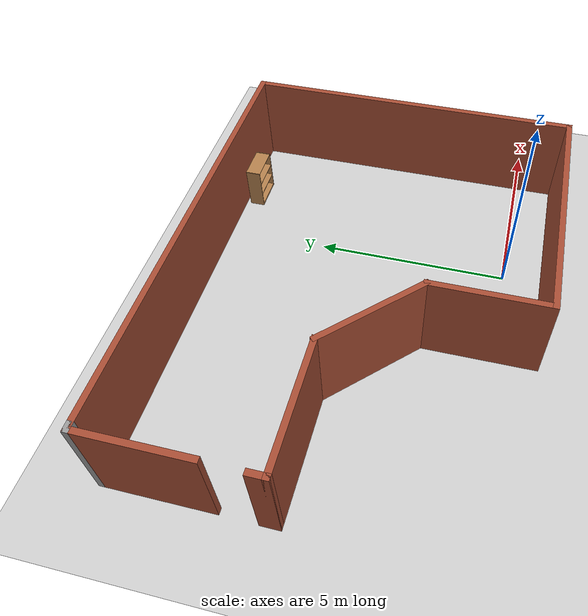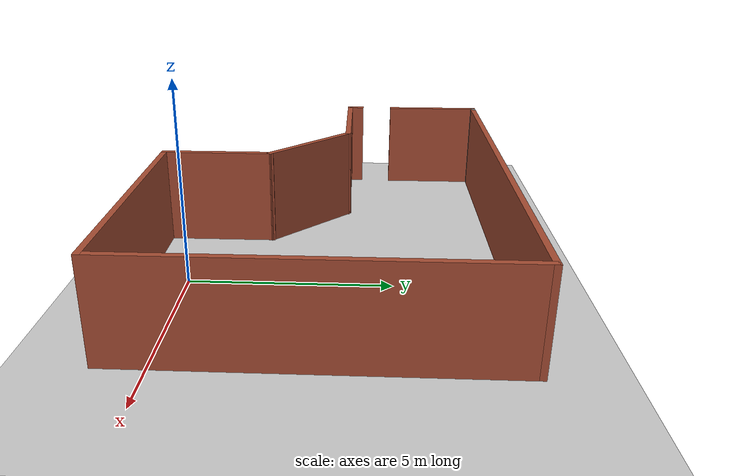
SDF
<sdf version="1.7">
 <world name="default">
  <light name="sun" type="directional">
   <pose>0 0 10 0 -0 0</pose>
   <diffuse>0.8 0.8 0.8 1</diffuse>
   <specular>0.2 0.2 0.2 1</specular>
   <attenuation>
    <range>1000</range>
    <constant>0.9</constant>
    <linear>0.01</linear>
    <quadratic>0.001</quadratic>
   </attenuation>
   <direction>-0.5 0.1 -0.9</direction>
   <spot><inner_angle>0</inner_angle><outer_angle>0</outer_angle><falloff>0</falloff></spot>
  </light>
  <model name="ground_plane">
   <static>1</static>
   <link name="link">
    <collision name="collision">
     <geometry><plane><normal>0 0 1</normal><size>100 100</size></plane></geometry>
     <surface>
      <contact><collide_bitmask>65535</collide_bitmask></contact>
      <friction><ode><mu>100</mu><mu2>50</mu2></ode></friction>
     </surface>
    </collision>
    <visual name="visual">
     <cast_shadows>0</cast_shadows>
     <geometry><plane><normal>0 0 1</normal><size>100 100</size></plane></geometry>
     <material>
      <script><uri>file://media/materials/scripts/gazebo.material</uri><name>Gazebo/Grey</name></script>
     </material>
    </visual>
   </link>
  </model>
  <gravity>0 0 -9.8</gravity>
  <magnetic_field>6e-06 2.3e-05 -4.2e-05</magnetic_field>
  <atmosphere type="adiabatic"/>
  <physics type="ode">
   <max_step_size>0.001</max_step_size>
   <real_time_factor>1</real_time_factor>
   <real_time_update_rate>1000</real_time_update_rate>
  </physics>
  <scene><ambient>0.4 0.4 0.4 1</ambient><background>0.7 0.7 0.7 1</background><shadows>1</shadows></scene>
  <spherical_coordinates>
   <surface_model>EARTH_WGS84</surface_model>
   <latitude_deg>0</latitude_deg>
   <longitude_deg>0</longitude_deg>
   <elevation>0</elevation>
   <heading_deg>0</heading_deg>
  </spherical_coordinates>
  <model name="room-with-slant">
   <pose>-2.03347 3.34781 0 0 -0 0</pose>
   <link name="Wall_0">
    <collision name="Wall_0_Collision">
     <geometry><box><size>0.5 0.15 2.5</size></box></geometry>
     <pose>0 0 1.25 0 -0 0</pose>
    </collision>
    <visual name="Wall_0_Visual">
     <pose>0 0 1.25 0 -0 0</pose>
     <geometry><box><size>0.5 0.15 2.5</size></box></geometry>
     <material>
      <script><uri>file://media/materials/scripts/gazebo.material</uri><name>Gazebo/Bricks</name></script>
      <ambient>1 1 1 1</ambient>
     </material>
     <meta><layer>0</layer></meta>
    </visual>
    <pose>-5.73263 0.615254 0 0 -0 -1.5708</pose>
   </link>
   <link name="Wall_1">
    <collision name="Wall_1_Collision">
     <geometry><box><size>3.25 0.15 2.5</size></box></geometry>
     <pose>0 0 1.25 0 -0 0</pose>
    </collision>
    <visual name="Wall_1_Visual">
     <pose>0 0 1.25 0 -0 0</pose>
     <geometry><box><size>3.25 0.15 2.5</size></box></geometry>
     <material>
      <script><uri>file://media/materials/scripts/gazebo.material</uri><name>Gazebo/Bricks</name></script>
      <ambient>1 1 1 1</ambient>
     </material>
     <meta><layer>0</layer></meta>
    </visual>
    <pose>-4.18263 0.440254 0 0 -0 0</pose>
   </link>
   <link name="Wall_2">
    <collision name="Wall_2_Collision">
     <geometry><box><size>3 0.15 2.5</size></box></geometry>
     <pose>0 0 1.25 0 -0 0</pose>
    </collision>
    <visual name="Wall_2_Visual">
     <pose>0 0 1.25 0 -0 0</pose>
     <geometry><box><size>3 0.15 2.5</size></box></geometry>
     <material>
      <script><uri>file://media/materials/scripts/gazebo.material</uri><name>Gazebo/Bricks</name></script>
      <ambient>1 1 1 1</ambient>
     </material>
     <meta><layer>0</layer></meta>
    </visual>
    <pose>-1.625 -0.567373 0 0 -0 -0.785398</pose>
   </link>
   <link name="Wall_3">
    <collision name="Wall_3_Collision">
     <geometry><box><size>3 0.15 2.5</size></box></geometry>
     <pose>0 0 1.25 0 -0 0</pose>
    </collision>
    <visual name="Wall_3_Visual">
     <pose>0 0 1.25 0 -0 0</pose>
     <geometry><box><size>3 0.15 2.5</size></box></geometry>
     <material>
      <script><uri>file://media/materials/scripts/gazebo.material</uri><name>Gazebo/Bricks</name></script>
      <ambient>1 1 1 1</ambient>
     </material>
     <meta><layer>0</layer></meta>
    </visual>
    <pose>-0.617373 -3 0 0 -0 -1.5708</pose>
   </link>
   <link name="Wall_4">
    <collision name="Wall_4_Collision">
     <geometry><box><size>6.5 0.15 2.5</size></box></geometry>
     <pose>0 0 1.25 0 -0 0</pose>
    </collision>
    <visual name="Wall_4_Visual">
     <pose>0 0 1.25 0 -0 0</pose>
     <geometry><box><size>6.5 0.15 2.5</size></box></geometry>
     <material>
      <script><uri>file://media/materials/scripts/gazebo.material</uri><name>Gazebo/Bricks</name></script>
      <ambient>1 1 1 1</ambient>
     </material>
     <meta><layer>0</layer></meta>
    </visual>
    <pose>2.55763 -4.425 0 0 -0 0</pose>
   </link>
   <link name="Wall_5">
    <collision name="Wall_5_Collision">
     <geometry><box><size>9 0.15 2.5</size></box></geometry>
     <pose>0 0 1.25 0 -0 0</pose>
    </collision>
    <visual name="Wall_5_Visual">
     <pose>0 0 1.25 0 -0 0</pose>
     <geometry><box><size>9 0.15 2.5</size></box></geometry>
     <material>
      <script><uri>file://media/materials/scripts/gazebo.material</uri><name>Gazebo/Bricks</name></script>
      <ambient>1 1 1 1</ambient>
     </material>
     <meta><layer>0</layer></meta>
    </visual>
    <pose>5.73263 0 0 0 -0 1.5708</pose>
   </link>
   <link name="Wall_6">
    <collision name="Wall_6_Collision">
     <geometry><box><size>11.5 0.15 2.5</size></box></geometry>
     <pose>0 0 1.25 0 -0 0</pose>
    </collision>
    <visual name="Wall_6_Visual">
     <pose>0 0 1.25 0 -0 0</pose>
     <geometry><box><size>11.5 0.15 2.5</size></box></geometry>
     <material>
      <script><uri>file://media/materials/scripts/gazebo.material</uri><name>Gazebo/Bricks</name></script>
      <ambient>1 1 1 1</ambient>
     </material>
     <meta><layer>0</layer></meta>
    </visual>
    <pose>0.057627 4.425 0 0 -0 3.14159</pose>
   </link>
   <link name="Wall_7">
    <collision name="Wall_7_Collision">
     <geometry><box><size>0.25 0.15 2.5</size></box></geometry>
     <pose>0 0 1.25 0 -0 0</pose>
    </collision>
    <visual name="Wall_7_Visual">
     <pose>0 0 1.25 0 -0 0</pose>
     <geometry><box><size>0.25 0.15 2.5</size></box></geometry>
     <material>
      <script><uri>file://media/materials/scripts/gazebo.material</uri><name>Gazebo/Grey</name></script>
      <ambient>1 1 1 1</ambient>
     </material>
     <meta><layer>0</layer></meta>
    </visual>
    <pose>-5.66737 4.425 0 0 -0 3.14159</pose>
   </link>
   <link name="Wall_8">
    <collision name="Wall_8_Collision">
     <geometry><box><size>2.75 0.15 2.5</size></box></geometry>
     <pose>0 0 1.25 0 -0 0</pose>
    </collision>
    <visual name="Wall_8_Visual">
     <pose>0 0 1.25 0 -0 0</pose>
     <geometry><box><size>2.75 0.15 2.5</size></box></geometry>
     <material>
      <script><uri>file://media/materials/scripts/gazebo.material</uri><name>Gazebo/Bricks</name></script>
      <ambient>1 1 1 1</ambient>
     </material>
     <meta><layer>0</layer></meta>
    </visual>
    <pose>-5.71737 3.125 0 0 -0 -1.5708</pose>
   </link>
   <static>1</static>
  </model>
  <model name="bookshelf">
   <static>1</static>
   <link name="link">
    <inertial><mass>1</mass></inertial>
    <collision name="back">
     <pose>0 0.005 0.6 0 -0 0</pose>
     <geometry><box><size>0.9 0.01 1.2</size></box></geometry>
    </collision>
    <visual name="visual1">
     <pose>0 0.005 0.6 0 -0 0</pose>
     <geometry><box><size>0.9 0.01 1.2</size></box></geometry>
     <material>
      <script><uri>file://media/materials/scripts/gazebo.material</uri><name>Gazebo/Wood</name></script>
     </material>
    </visual>
    <collision name="left_side">
     <pose>0.45 -0.195 0.6 0 -0 0</pose>
     <geometry><box><size>0.02 0.4 1.2</size></box></geometry>
    </collision>
    <visual name="visual2">
     <pose>0.45 -0.195 0.6 0 -0 0</pose>
     <geometry><box><size>0.02 0.4 1.2</size></box></geometry>
     <material>
      <script><uri>file://media/materials/scripts/gazebo.material</uri><name>Gazebo/Wood</name></script>
     </material>
    </visual>
    <collision name="right_side">
     <pose>-0.45 -0.195 0.6 0 -0 0</pose>
     <geometry><box><size>0.02 0.4 1.2</size></box></geometry>
    </collision>
    <visual name="visual3">
     <pose>-0.45 -0.195 0.6 0 -0 0</pose>
     <geometry><box><size>0.02 0.4 1.2</size></box></geometry>
     <material>
      <script><uri>file://media/materials/scripts/gazebo.material</uri><name>Gazebo/Wood</name></script>
     </material>
    </visual>
    <collision name="bottom">
     <pose>0 -0.195 0.03 0 -0 0</pose>
     <geometry><box><size>0.88 0.4 0.06</size></box></geometry>
    </collision>
    <visual name="visual4">
     <pose>0 -0.195 0.03 0 -0 0</pose>
     <geometry><box><size>0.88 0.4 0.06</size></box></geometry>
     <material>
      <script><uri>file://media/materials/scripts/gazebo.material</uri><name>Gazebo/Wood</name></script>
     </material>
    </visual>
    <collision name="top">
     <pose>0 -0.195 1.19 0 -0 0</pose>
     <geometry><box><size>0.88 0.4 0.02</size></box></geometry>
    </collision>
    <visual name="visual5">
     <pose>0 -0.195 1.19 0 -0 0</pose>
     <geometry><box><size>0.88 0.4 0.02</size></box></geometry>
     <material>
      <script><uri>file://media/materials/scripts/gazebo.material</uri><name>Gazebo/Wood</name></script>
     </material>
    </visual>
    <collision name="low_shelf">
     <pose>0 -0.195 0.43 0 -0 0</pose>
     <geometry><box><size>0.88 0.4 0.02</size></box></geometry>
    </collision>
    <visual name="visual6">
     <pose>0 -0.195 0.43 0 -0 0</pose>
     <geometry><box><size>0.88 0.4 0.02</size></box></geometry>
     <material>
      <script><uri>file://media/materials/scripts/gazebo.material</uri><name>Gazebo/Wood</name></script>
     </material>
    </visual>
    <collision name="high_shelf">
     <pose>0 -0.195 0.8 0 -0 0</pose>
     <geometry><box><size>0.88 0.4 0.02</size></box></geometry>
    </collision>
    <visual name="visual7">
     <pose>0 -0.195 0.8 0 -0 0</pose>
     <geometry><box><size>0.88 0.4 0.02</size></box></geometry>
     <material>
      <script><uri>file://media/materials/scripts/gazebo.material</uri><name>Gazebo/Wood</name></script>
     </material>
    </visual>
   </link>
   <pose>1.66514 7.57511 -0 0 -0 0</pose>
  </model>
 </world>
</sdf>
